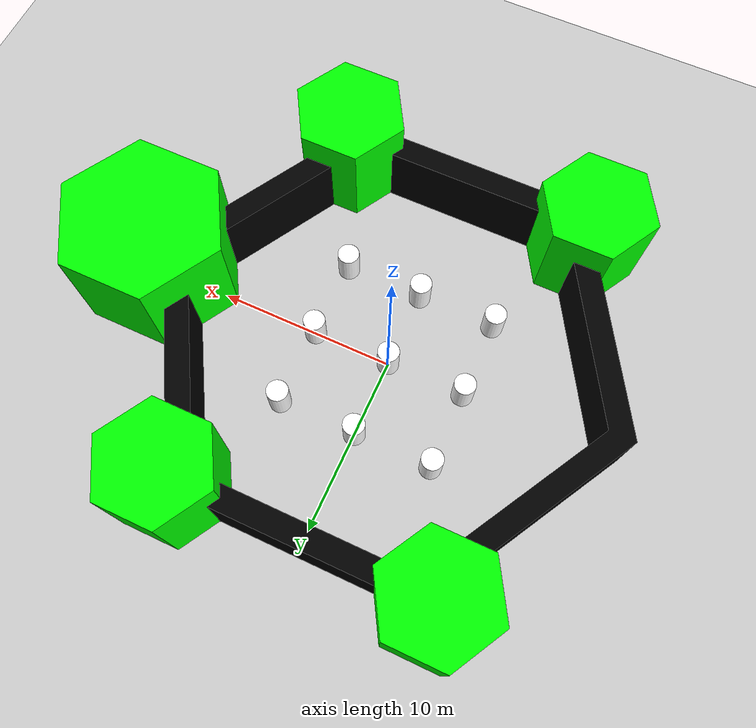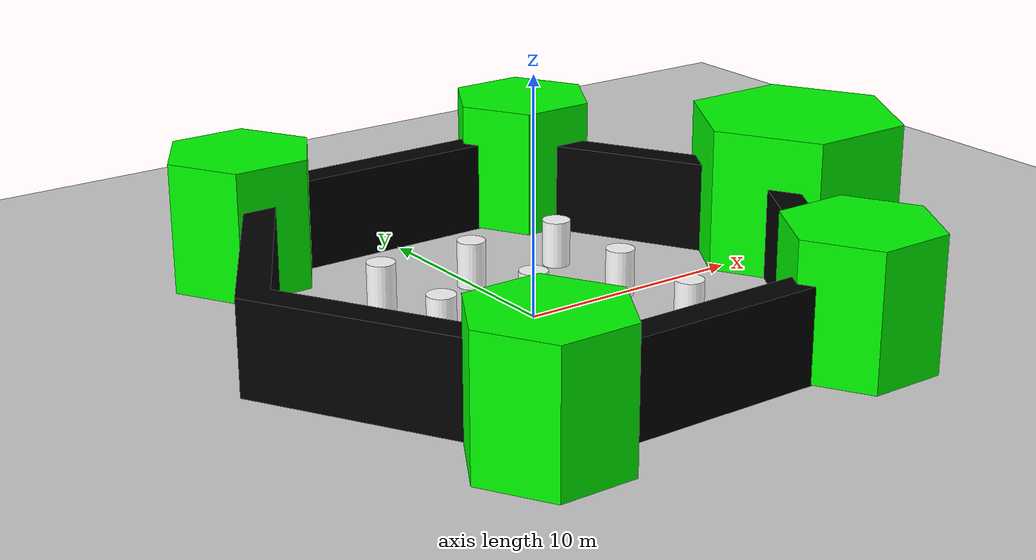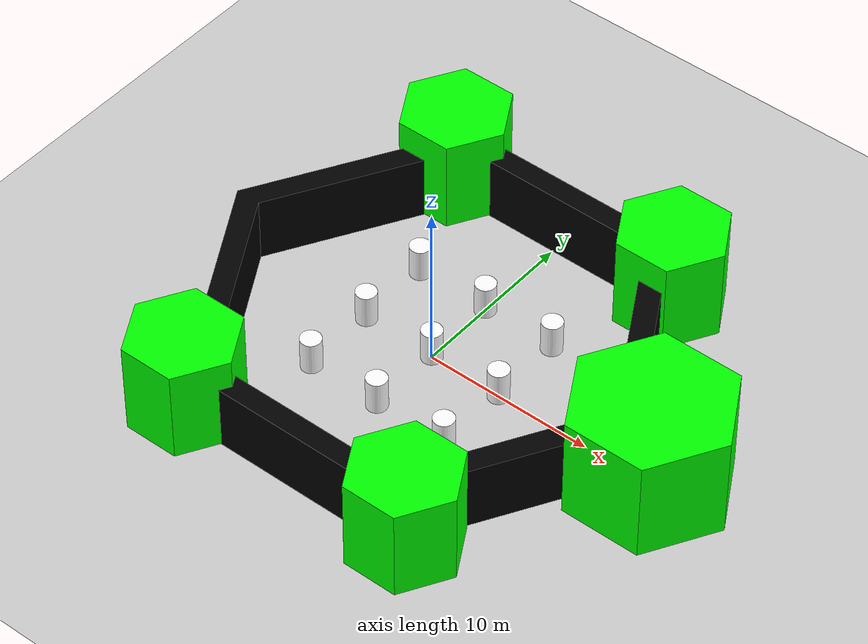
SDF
<?xml version="1.0"?>
<sdf version="1.8">
  <world name="default">
    <physics type="ode">
      <real_time_update_rate>250</real_time_update_rate>
      <max_step_size>0.015</max_step_size>
      <real_time_factor>1</real_time_factor>
      <ode>
        <solver>
          <type>quick</type>
          <iters>20</iters>
          <precon_iters>0</precon_iters>
          <sor>1.400000</sor>
          <use_dynamic_moi_rescaling>0</use_dynamic_moi_rescaling>
        </solver>
        <constraints>
          <cfm>0.00001</cfm>
          <erp>0.2</erp>
          <contact_max_correcting_vel>2000.000000</contact_max_correcting_vel>
          <contact_surface_layer>0.01000</contact_surface_layer>
        </constraints>
      </ode>
    </physics>
    <plugin
      filename="gz-sim-physics-system"
      name="gz::sim::systems::Physics">
    </plugin>
    <plugin
      filename="gz-sim-user-commands-system"
      name="gz::sim::systems::UserCommands">
    </plugin>
    <!-- Hapus jika pakai headless -->
    <plugin
      filename="gz-sim-scene-broadcaster-system"
      name="gz::sim::systems::SceneBroadcaster">
    </plugin>
    <plugin
      filename="gz-sim-sensors-system"
      name="gz::sim::systems::Sensors">
      <render_engine>ogre2</render_engine>
    </plugin>
    <!-- nggak pakai IMU -->

    <include>
      <uri>https://fuel.gazebosim.org/1.0/OpenRobotics/models/Ground Plane</uri>
    </include>

    <include>
      <uri>https://fuel.gazebosim.org/1.0/OpenRobotics/models/Sun</uri>
    </include>

    <include>
      <uri>model://turtlebot3_world</uri>
      <name>turtlebot3_world</name>
      <static>true</static>
      <scale>10 10 10</scale>
    </include>
  </world>
</sdf>

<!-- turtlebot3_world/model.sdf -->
<sdf version="1.5">
    <model name='ros_symbol'>
      <static>1</static>
      <link name='symbol'>
        <collision name='one_one'>
          <pose>-4.4 -4.4 1.0 0 0 0</pose>
          <geometry>
            <cylinder>
              <radius>0.6</radius>
              <length>2.0</length>
            </cylinder>
          </geometry>
          <max_contacts>10</max_contacts>
          <surface>
            <bounce/>
            <friction>
              <ode/>
            </friction>
            <contact>
              <ode/>
            </contact>
          </surface>
        </collision>

        <visual name='one_one'>
          <pose>-4.4 -4.4 1.0 0 0 0</pose>
          <geometry>
            <cylinder>
              <radius>0.6</radius>
              <length>2.0</length>
            </cylinder>
          </geometry>
          <material>
            <ambient>1 1 1 1</ambient>
            <diffuse>1 1 1 1</diffuse>
            <specular>0.2 0.2 0.2 1</specular>
            <emissive>0 0 0 1</emissive>
          </material>
        </visual>

        <collision name='one_two'>
          <pose>-4.4 0 1.0 0 0 0</pose>
          <geometry>
            <cylinder>
              <radius>0.6</radius>
              <length>2.0</length>
            </cylinder>
          </geometry>
          <max_contacts>10</max_contacts>
          <surface>
            <bounce/>
            <friction>
              <ode/>
            </friction>
            <contact>
              <ode/>
            </contact>
          </surface>
        </collision>

        <visual name='one_two'>
          <pose>-4.4 0 1.0 0 0 0</pose>
          <geometry>
            <cylinder>
              <radius>0.6</radius>
              <length>2.0</length>
            </cylinder>
          </geometry>
          <material>
            <ambient>1 1 1 1</ambient>
            <diffuse>1 1 1 1</diffuse>
            <specular>0.2 0.2 0.2 1</specular>
            <emissive>0 0 0 1</emissive>
          </material>
        </visual>

        <collision name='one_three'>
          <pose>-4.4 4.4 1.0 0 0 0</pose>
          <geometry>
            <cylinder>
              <radius>0.6</radius>
              <length>2.0</length>
            </cylinder>
          </geometry>
          <max_contacts>10</max_contacts>
          <surface>
            <bounce/>
            <friction>
              <ode/>
            </friction>
            <contact>
              <ode/>
            </contact>
          </surface>
        </collision>

        <visual name='one_three'>
          <pose>-4.4 4.4 1.0 0 0 0</pose>
          <geometry>
            <cylinder>
              <radius>0.6</radius>
              <length>2.0</length>
            </cylinder>
          </geometry>
          <material>
            <ambient>1 1 1 1</ambient>
            <diffuse>1 1 1 1</diffuse>
            <specular>0.2 0.2 0.2 1</specular>
            <emissive>0 0 0 1</emissive>
          </material>
        </visual>

        <collision name='two_one'>
          <pose>0 -4.4 1.0 0 0 0</pose>
          <geometry>
            <cylinder>
              <radius>0.6</radius>
              <length>2.0</length>
            </cylinder>
          </geometry>
          <max_contacts>10</max_contacts>
          <surface>
            <bounce/>
            <friction>
              <ode/>
            </friction>
            <contact>
              <ode/>
            </contact>
          </surface>
        </collision>

        <visual name='two_one'>
          <pose>0 -4.4 1.0 0 0 0</pose>
          <geometry>
            <cylinder>
              <radius>0.6</radius>
              <length>2.0</length>
            </cylinder>
          </geometry>
          <material>
            <ambient>1 1 1 1</ambient>
            <diffuse>1 1 1 1</diffuse>
            <specular>0.2 0.2 0.2 1</specular>
            <emissive>0 0 0 1</emissive>
          </material>
        </visual>

        <collision name='two_two'>
          <pose>0 0 1.0 0 0 0</pose>
          <geometry>
            <cylinder>
              <radius>0.6</radius>
              <length>2.0</length>
            </cylinder>
          </geometry>
          <max_contacts>10</max_contacts>
          <surface>
            <bounce/>
            <friction>
              <ode/>
            </friction>
            <contact>
              <ode/>
            </contact>
          </surface>
        </collision>

        <visual name='two_two'>
          <pose>0 0 1.0 0 0 0</pose>
          <geometry>
            <cylinder>
              <radius>0.6</radius>
              <length>2.0</length>
            </cylinder>
          </geometry>
          <material>
            <ambient>1 1 1 1</ambient>
            <diffuse>1 1 1 1</diffuse>
            <specular>0.2 0.2 0.2 1</specular>
            <emissive>0 0 0 1</emissive>
          </material>
        </visual>

        <collision name='two_three'>
          <pose>0 4.4 1.0 0 0 0</pose>
          <geometry>
            <cylinder>
              <radius>0.6</radius>
              <length>2.0</length>
            </cylinder>
          </geometry>
          <max_contacts>10</max_contacts>
          <surface>
            <bounce/>
            <friction>
              <ode/>
            </friction>
            <contact>
              <ode/>
            </contact>
          </surface>
        </collision>

        <visual name='two_three'>
          <pose>0 4.4 1.0 0 0 0</pose>
          <geometry>
            <cylinder>
              <radius>0.6</radius>
              <length>2.0</length>
            </cylinder>
          </geometry>
          <material>
            <ambient>1 1 1 1</ambient>
            <diffuse>1 1 1 1</diffuse>
            <specular>0.2 0.2 0.2 1</specular>
            <emissive>0 0 0 1</emissive>
          </material>
        </visual>

        <collision name='three_one'>
          <pose>4.4 -4.4 1.0 0 0 0</pose>
          <geometry>
            <cylinder>
              <radius>0.6</radius>
              <length>2.0</length>
            </cylinder>
          </geometry>
          <max_contacts>10</max_contacts>
          <surface>
            <bounce/>
            <friction>
              <ode/>
            </friction>
            <contact>
              <ode/>
            </contact>
          </surface>
        </collision>

        <visual name='three_one'>
          <pose>4.4 -4.4 1.0 0 0 0</pose>
          <geometry>
            <cylinder>
              <radius>0.6</radius>
              <length>2.0</length>
            </cylinder>
          </geometry>
          <material>
            <ambient>1 1 1 1</ambient>
            <diffuse>1 1 1 1</diffuse>
            <specular>0.2 0.2 0.2 1</specular>
            <emissive>0 0 0 1</emissive>
          </material>
        </visual>

        <collision name='three_two'>
          <pose>4.4 0 1.0 0 0 0</pose>
          <geometry>
            <cylinder>
              <radius>0.6</radius>
              <length>2.0</length>
            </cylinder>
          </geometry>
          <max_contacts>10</max_contacts>
          <surface>
            <bounce/>
            <friction>
              <ode/>
            </friction>
            <contact>
              <ode/>
            </contact>
          </surface>
        </collision>

        <visual name='three_two'>
          <pose>4.4 0 1.0 0 0 0</pose>
          <geometry>
            <cylinder>
              <radius>0.6</radius>
              <length>2.0</length>
            </cylinder>
          </geometry>
          <material>
            <ambient>1 1 1 1</ambient>
            <diffuse>1 1 1 1</diffuse>
            <specular>0.2 0.2 0.2 1</specular>
            <emissive>0 0 0 1</emissive>
          </material>
        </visual>

        <collision name='three_three'>
          <pose>4.4 4.4 1.0 0 0 0</pose>
          <geometry>
            <cylinder>
              <radius>0.6</radius>
              <length>2.0</length>
            </cylinder>
          </geometry>
          <max_contacts>10</max_contacts>
          <surface>
            <bounce/>
            <friction>
              <ode/>
            </friction>
            <contact>
              <ode/>
            </contact>
          </surface>
        </collision>

        <visual name='three_three'>
          <pose>4.4 4.4 1.0 0 0 0</pose>
          <geometry>
            <cylinder>
              <radius>0.6</radius>
              <length>2.0</length>
            </cylinder>
          </geometry>
          <material>
            <ambient>1 1 1 1</ambient>
            <diffuse>1 1 1 1</diffuse>
            <specular>0.2 0.2 0.2 1</specular>
            <emissive>0 0 0 1</emissive>
          </material>
        </visual>

        <!-- Draw Hexagon -->
        <collision name='head'>
          <pose>14.0 0 -2.0 0 0 0</pose>
          <geometry>
            <mesh>
              <uri>model://turtlebot3_world/meshes/hexagon.dae</uri>
              <scale>3.2 3.2 3.2</scale>
            </mesh>
          </geometry>
          <max_contacts>10</max_contacts>
          <surface>
            <bounce/>
            <friction>
              <ode/>
            </friction>
            <contact>
              <ode/>
            </contact>
          </surface>
        </collision>

        <visual name='head'>
          <pose>14.0 0 -2.0 0 0 0</pose>
          <geometry>
            <mesh>
              <uri>model://turtlebot3_world/meshes/hexagon.dae</uri>
              <scale>3.2 3.2 3.2</scale>
            </mesh>
          </geometry>
          <material>
            <ambient>0 1 0 1</ambient>
            <diffuse>0 1 0 1</diffuse>
            <specular>0.2 0.2 0.2 1</specular>
            <emissive>0 0 0 1</emissive>
          </material>
        </visual>

        <collision name='left_hand'>
          <pose>7.2 10.8 0 0 0 0</pose>
          <geometry>
            <mesh>
              <uri>model://turtlebot3_world/meshes/hexagon.dae</uri>
              <scale>2.2 2.2 2.2</scale>
            </mesh>
          </geometry>
          <max_contacts>10</max_contacts>
          <surface>
            <bounce/>
            <friction>
              <ode/>
            </friction>
            <contact>
              <ode/>
            </contact>
          </surface>
        </collision>

        <visual name='left_hand'>
          <pose>7.2 10.8 0 0 0 0</pose>
          <geometry>
            <mesh>
              <uri>model://turtlebot3_world/meshes/hexagon.dae</uri>
              <scale>2.2 2.2 2.2</scale>
            </mesh>
          </geometry>
          <material>
            <ambient>0 1 0 1</ambient>
            <diffuse>0 1 0 1</diffuse>
            <specular>0.2 0.2 0.2 1</specular>
            <emissive>0 0 0 1</emissive>
          </material>
        </visual>

        <collision name='right_hand'>
          <pose>7.2 -10.8 0 0 0 0</pose>
          <geometry>
            <mesh>
              <uri>model://turtlebot3_world/meshes/hexagon.dae</uri>
              <scale>2.2 2.2 2.2</scale>
            </mesh>
          </geometry>
          <max_contacts>10</max_contacts>
          <surface>
            <bounce/>
            <friction>
              <ode/>
            </friction>
            <contact>
              <ode/>
            </contact>
          </surface>
        </collision>

        <visual name='right_hand'>
          <pose>7.2 -10.8 0 0 0 0</pose>
          <geometry>
            <mesh>
              <uri>model://turtlebot3_world/meshes/hexagon.dae</uri>
              <scale>2.2 2.2 2.2</scale>
            </mesh>
          </geometry>
          <material>
            <ambient>0 1 0 1</ambient>
            <diffuse>0 1 0 1</diffuse>
            <specular>0.2 0.2 0.2 1</specular>
            <emissive>0 0 0 1</emissive>
          </material>
        </visual>

        <collision name='left_foot'>
          <pose>-7.2 10.8 0 0 0 0</pose>
          <geometry>
            <mesh>
              <uri>model://turtlebot3_world/meshes/hexagon.dae</uri>
              <scale>2.2 2.2 2.2</scale>
            </mesh>
          </geometry>
          <max_contacts>10</max_contacts>
          <surface>
            <bounce/>
            <friction>
              <ode/>
            </friction>
            <contact>
              <ode/>
            </contact>
          </surface>
        </collision>

        <visual name='left_foot'>
          <pose>-7.2 10.8 0 0 0 0</pose>
          <geometry>
            <mesh>
              <uri>model://turtlebot3_world/meshes/hexagon.dae</uri>
              <scale>2.2 2.2 2.2</scale>
            </mesh>
          </geometry>
          <material>
            <ambient>0 1 0 1</ambient>
            <diffuse>0 1 0 1</diffuse>
            <specular>0.2 0.2 0.2 1</specular>
            <emissive>0 0 0 1</emissive>
          </material>
        </visual>

        <collision name='right_foot'>
          <pose>-7.2 -10.8 0 0 0 0</pose>
          <geometry>
            <mesh>
              <uri>model://turtlebot3_world/meshes/hexagon.dae</uri>
              <scale>2.2 2.2 2.2</scale>
            </mesh>
          </geometry>
          <max_contacts>10</max_contacts>
          <surface>
            <bounce/>
            <friction>
              <ode/>
            </friction>
            <contact>
              <ode/>
            </contact>
          </surface>
        </collision>

        <visual name='right_foot'>
          <pose>-7.2 -10.8 0 0 0 0</pose>
          <geometry>
            <mesh>
              <uri>model://turtlebot3_world/meshes/hexagon.dae</uri>
              <scale>2.2 2.2 2.2</scale>
            </mesh>
          </geometry>
          <material>
            <ambient>0 1 0 1</ambient>
            <diffuse>0 1 0 1</diffuse>
            <specular>0.2 0.2 0.2 1</specular>
            <emissive>0 0 0 1</emissive>
          </material>
        </visual>

        <!-- Draw Wall -->
        <collision name='body'>
        <pose>0 0 -1.2 0 0 -1.5708</pose>
        <geometry>
          <mesh>
            <uri>model://turtlebot3_world/meshes/wall.dae</uri>
            <scale>1.0 1.0 1.0</scale>
          </mesh>
        </geometry>
        <max_contacts>10</max_contacts>
        <surface>
          <bounce/>
          <friction>
            <ode/>
          </friction>
          <contact>
            <ode/>
          </contact>
        </surface>
      </collision>

      <visual name='body'>
        <pose>0 0 -1.2 0 0 -1.5708</pose>
        <geometry>
          <mesh>
            <uri>model://turtlebot3_world/meshes/wall.dae</uri>
            <scale>1.0 1.0 1.0</scale>
          </mesh>
        </geometry>
        <material>
          <ambient>0 0 0 1</ambient>
          <diffuse>0 0 0 1</diffuse>
          <specular>0 0 0 1</specular>
          <emissive>0 0 0 1</emissive>
        </material>
      </visual>
    </link>
  </model>
</sdf>
